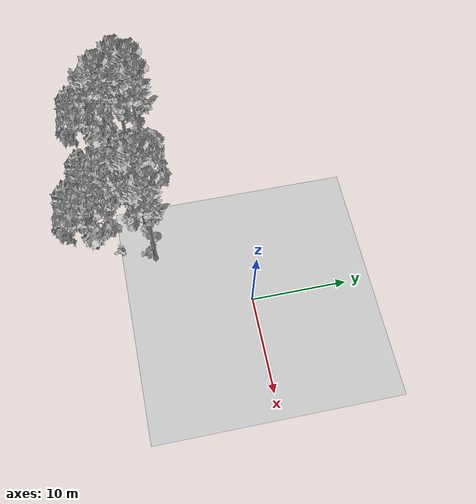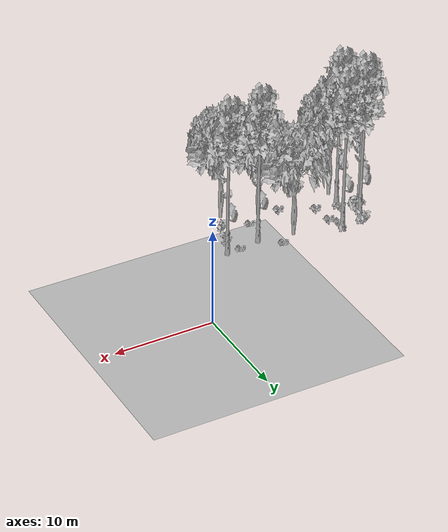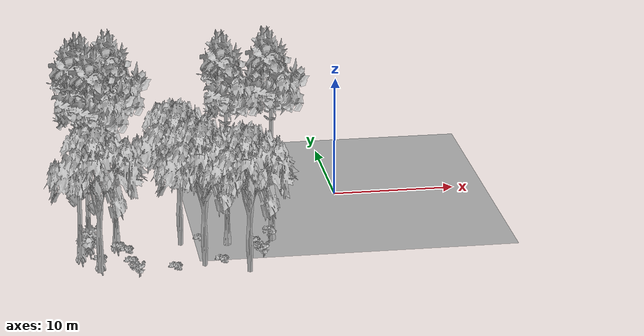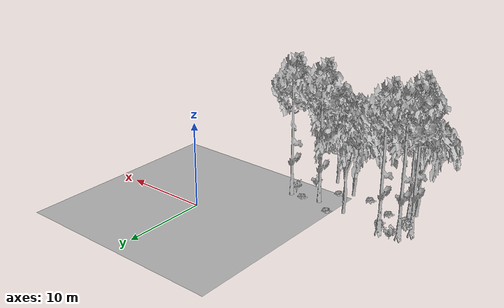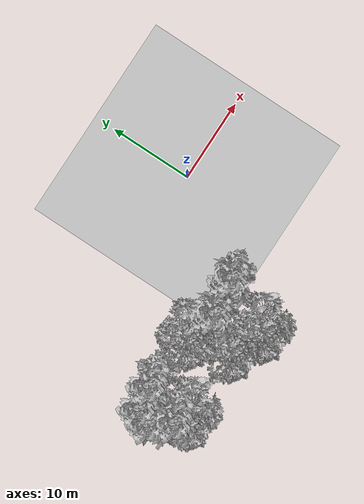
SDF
<sdf version="1.7">
 <world name="default">
  <model name="ground_plane">
   <static>1</static>
   <link name="link">
    <collision name="collision">
     <pose>-50 0 0 0 -0 0</pose>
     <geometry><plane><normal>0 0 1</normal><size>80 80</size></plane></geometry>
     <surface><contact><ode><min_depth>0.01</min_depth><max_vel>0</max_vel></ode></contact></surface>
    </collision>
    <visual name="grass">
     <cast_shadows>0</cast_shadows>
     <geometry>
      <mesh>
       <scale>0.46714285714285714 0.46714285714285714 0.1</scale>
       <uri>file://grass_plane/meshes/grass_plane.dae</uri>
      </mesh>
     </geometry>
    </visual>
   </link>
  </model>
  <model name="Tree 9">
   <static>1</static>
   <pose>-13.837278724867915 -9.116310804493875 0 1.57079 -0 0</pose>
   <link name="link">
    <collision name="collision">
     <geometry><mesh><scale>3.5 5 3.5</scale><uri>model://tree_2/meshes/tree_2.obj</uri></mesh></geometry>
    </collision>
    <visual name="visual">
     <geometry><mesh><scale>3.5 5 3.5</scale><uri>model://tree_2/meshes/tree_2.obj</uri></mesh></geometry>
    </visual>
   </link>
  </model>
  <model name="Tree 71">
   <static>1</static>
   <pose>-20.896210768841442 -8.637615354688243 0 1.57079 -0 0</pose>
   <link name="link">
    <collision name="collision">
     <geometry><mesh><scale>3.5 5 3.5</scale><uri>model://tree_9/meshes/tree_9.obj</uri></mesh></geometry>
    </collision>
    <visual name="visual">
     <geometry><mesh><scale>3.5 5 3.5</scale><uri>model://tree_9/meshes/tree_9.obj</uri></mesh></geometry>
    </visual>
   </link>
  </model>
  <model name="Tree 73">
   <static>1</static>
   <pose>-20.432016152666726 -13.659379917081942 0 1.57079 -0 0</pose>
   <link name="link">
    <collision name="collision">
     <geometry><mesh><scale>3.5 5 3.5</scale><uri>model://tree_2/meshes/tree_2.obj</uri></mesh></geometry>
    </collision>
    <visual name="visual">
     <geometry><mesh><scale>3.5 5 3.5</scale><uri>model://tree_2/meshes/tree_2.obj</uri></mesh></geometry>
    </visual>
   </link>
  </model>
  <model name="Tree 87">
   <static>1</static>
   <pose>-18.721739430540733 -8.259599063494363 0 1.57079 -0 0</pose>
   <link name="link">
    <collision name="collision">
     <geometry><mesh><scale>3.5 5 3.5</scale><uri>model://tree_9/meshes/tree_9.obj</uri></mesh></geometry>
    </collision>
    <visual name="visual">
     <geometry><mesh><scale>3.5 5 3.5</scale><uri>model://tree_9/meshes/tree_9.obj</uri></mesh></geometry>
    </visual>
   </link>
  </model>
  <model name="Tree 117">
   <static>1</static>
   <pose>-9.124989566989495 -15.083363440228645 0 1.57079 -0 0</pose>
   <link name="link">
    <collision name="collision">
     <geometry><mesh><scale>3.5 5 3.5</scale><uri>model://tree_2/meshes/tree_2.obj</uri></mesh></geometry>
    </collision>
    <visual name="visual">
     <geometry><mesh><scale>3.5 5 3.5</scale><uri>model://tree_2/meshes/tree_2.obj</uri></mesh></geometry>
    </visual>
   </link>
  </model>
  <model name="Tree 332">
   <static>1</static>
   <pose>-20.245800696761606 -11.974994519119484 0 1.57079 -0 0</pose>
   <link name="link">
    <collision name="collision">
     <geometry><mesh><scale>3.5 5 3.5</scale><uri>model://tree_9/meshes/tree_9.obj</uri></mesh></geometry>
    </collision>
    <visual name="visual">
     <geometry><mesh><scale>3.5 5 3.5</scale><uri>model://tree_9/meshes/tree_9.obj</uri></mesh></geometry>
    </visual>
   </link>
  </model>
  <model name="Tree 434">
   <static>1</static>
   <pose>-6.527865629991389 -9.111184831189227 0 1.57079 -0 0</pose>
   <link name="link">
    <collision name="collision">
     <geometry><mesh><scale>3.5 5 3.5</scale><uri>model://tree_9/meshes/tree_9.obj</uri></mesh></geometry>
    </collision>
    <visual name="visual">
     <geometry><mesh><scale>3.5 5 3.5</scale><uri>model://tree_9/meshes/tree_9.obj</uri></mesh></geometry>
    </visual>
   </link>
  </model>
  <model name="Tree 522">
   <static>1</static>
   <pose>-10.102604909864944 -9.580918600949737 0 1.57079 -0 0</pose>
   <link name="link">
    <collision name="collision">
     <geometry><mesh><scale>3.5 5 3.5</scale><uri>model://tree_9/meshes/tree_9.obj</uri></mesh></geometry>
    </collision>
    <visual name="visual">
     <geometry><mesh><scale>3.5 5 3.5</scale><uri>model://tree_9/meshes/tree_9.obj</uri></mesh></geometry>
    </visual>
   </link>
  </model>
  <model name="Tree 593">
   <static>1</static>
   <pose>-21.63239201570966 -10.070574425510522 0 1.57079 -0 0</pose>
   <link name="link">
    <collision name="collision">
     <geometry><mesh><scale>3.5 5 3.5</scale><uri>model://tree_9/meshes/tree_9.obj</uri></mesh></geometry>
    </collision>
    <visual name="visual">
     <geometry><mesh><scale>3.5 5 3.5</scale><uri>model://tree_9/meshes/tree_9.obj</uri></mesh></geometry>
    </visual>
   </link>
  </model>
  <model name="Tree 630">
   <static>1</static>
   <pose>-12.406747354636494 -13.472333957552472 0 1.57079 -0 0</pose>
   <link name="link">
    <collision name="collision">
     <geometry><mesh><scale>3.5 5 3.5</scale><uri>model://tree_2/meshes/tree_2.obj</uri></mesh></geometry>
    </collision>
    <visual name="visual">
     <geometry><mesh><scale>3.5 5 3.5</scale><uri>model://tree_2/meshes/tree_2.obj</uri></mesh></geometry>
    </visual>
   </link>
  </model>
  <model name="Bush 49">
   <static>1</static>
   <pose>-18.037523176222397 -9.694550190816607 0 1.57079 -0 0</pose>
   <link name="link">
    <collision name="collision">
     <geometry><mesh><scale>2 2 2</scale><uri>model://bush_2/meshes/bush_2.obj</uri></mesh></geometry>
     <surface><contact><collide_without_contact>false</collide_without_contact></contact></surface>
    </collision>
    <visual name="visual">
     <geometry><mesh><scale>2 2 2</scale><uri>model://bush_2/meshes/bush_2.obj</uri></mesh></geometry>
    </visual>
   </link>
  </model>
  <model name="Bush 61">
   <static>1</static>
   <pose>-17.506990950607527 -15.017032731215547 0 1.57079 -0 0</pose>
   <link name="link">
    <collision name="collision">
     <geometry><mesh><scale>2 2 2</scale><uri>model://bush_0/meshes/bush_0.obj</uri></mesh></geometry>
     <surface><contact><collide_without_contact>false</collide_without_contact></contact></surface>
    </collision>
    <visual name="visual">
     <geometry><mesh><scale>2 2 2</scale><uri>model://bush_0/meshes/bush_0.obj</uri></mesh></geometry>
    </visual>
   </link>
  </model>
  <model name="Bush 74">
   <static>1</static>
   <pose>-17.882069847085475 -11.9359665819945 0 1.57079 -0 0</pose>
   <link name="link">
    <collision name="collision">
     <geometry><mesh><scale>2 2 2</scale><uri>model://bush_2/meshes/bush_2.obj</uri></mesh></geometry>
     <surface><contact><collide_without_contact>false</collide_without_contact></contact></surface>
    </collision>
    <visual name="visual">
     <geometry><mesh><scale>2 2 2</scale><uri>model://bush_2/meshes/bush_2.obj</uri></mesh></geometry>
    </visual>
   </link>
  </model>
  <model name="Bush 145">
   <static>1</static>
   <pose>-20.49563637490155 -7.37318392726246 0 1.57079 -0 0</pose>
   <link name="link">
    <collision name="collision">
     <geometry><mesh><scale>2 2 2</scale><uri>model://bush_0/meshes/bush_0.obj</uri></mesh></geometry>
     <surface><contact><collide_without_contact>false</collide_without_contact></contact></surface>
    </collision>
    <visual name="visual">
     <geometry><mesh><scale>2 2 2</scale><uri>model://bush_0/meshes/bush_0.obj</uri></mesh></geometry>
    </visual>
   </link>
  </model>
  <model name="Bush 179">
   <static>1</static>
   <pose>-6.774886957456399 -9.727884236008421 0 1.57079 -0 0</pose>
   <link name="link">
    <collision name="collision">
     <geometry><mesh><scale>2 2 2</scale><uri>model://bush_5/meshes/bush_5.obj</uri></mesh></geometry>
     <surface><contact><collide_without_contact>false</collide_without_contact></contact></surface>
    </collision>
    <visual name="visual">
     <geometry><mesh><scale>2 2 2</scale><uri>model://bush_5/meshes/bush_5.obj</uri></mesh></geometry>
    </visual>
   </link>
  </model>
  <model name="Bush 258">
   <static>1</static>
   <pose>-20.19954340019682 -11.167903035137769 0 1.57079 -0 0</pose>
   <link name="link">
    <collision name="collision">
     <geometry><mesh><scale>2 2 2</scale><uri>model://bush_2/meshes/bush_2.obj</uri></mesh></geometry>
     <surface><contact><collide_without_contact>false</collide_without_contact></contact></surface>
    </collision>
    <visual name="visual">
     <geometry><mesh><scale>2 2 2</scale><uri>model://bush_2/meshes/bush_2.obj</uri></mesh></geometry>
    </visual>
   </link>
  </model>
  <model name="Bush 261">
   <static>1</static>
   <pose>-12.105880183164718 -8.20777558529496 0 1.57079 -0 0</pose>
   <link name="link">
    <collision name="collision">
     <geometry><mesh><scale>2 2 2</scale><uri>model://bush_2/meshes/bush_2.obj</uri></mesh></geometry>
     <surface><contact><collide_without_contact>false</collide_without_contact></contact></surface>
    </collision>
    <visual name="visual">
     <geometry><mesh><scale>2 2 2</scale><uri>model://bush_2/meshes/bush_2.obj</uri></mesh></geometry>
    </visual>
   </link>
  </model>
  <model name="Bush 277">
   <static>1</static>
   <pose>-18.632671062920526 -8.868664709551723 0 1.57079 -0 0</pose>
   <link name="link">
    <collision name="collision">
     <geometry><mesh><scale>2 2 2</scale><uri>model://bush_2/meshes/bush_2.obj</uri></mesh></geometry>
     <surface><contact><collide_without_contact>false</collide_without_contact></contact></surface>
    </collision>
    <visual name="visual">
     <geometry><mesh><scale>2 2 2</scale><uri>model://bush_2/meshes/bush_2.obj</uri></mesh></geometry>
    </visual>
   </link>
  </model>
  <model name="Bush 307">
   <static>1</static>
   <pose>-7.648228844464036 -12.548691918703348 0 1.57079 -0 0</pose>
   <link name="link">
    <collision name="collision">
     <geometry><mesh><scale>2 2 2</scale><uri>model://bush_0/meshes/bush_0.obj</uri></mesh></geometry>
     <surface><contact><collide_without_contact>false</collide_without_contact></contact></surface>
    </collision>
    <visual name="visual">
     <geometry><mesh><scale>2 2 2</scale><uri>model://bush_0/meshes/bush_0.obj</uri></mesh></geometry>
    </visual>
   </link>
  </model>
  <model name="Bush 502">
   <static>1</static>
   <pose>-10.89334246254598 -12.589484487504954 0 1.57079 -0 0</pose>
   <link name="link">
    <collision name="collision">
     <geometry><mesh><scale>2 2 2</scale><uri>model://bush_2/meshes/bush_2.obj</uri></mesh></geometry>
     <surface><contact><collide_without_contact>false</collide_without_contact></contact></surface>
    </collision>
    <visual name="visual">
     <geometry><mesh><scale>2 2 2</scale><uri>model://bush_2/meshes/bush_2.obj</uri></mesh></geometry>
    </visual>
   </link>
  </model>
  <model name="Bush 521">
   <static>1</static>
   <pose>-7.992244051002491 -9.261210672434423 0 1.57079 -0 0</pose>
   <link name="link">
    <collision name="collision">
     <geometry><mesh><scale>2 2 2</scale><uri>model://bush_2/meshes/bush_2.obj</uri></mesh></geometry>
     <surface><contact><collide_without_contact>false</collide_without_contact></contact></surface>
    </collision>
    <visual name="visual">
     <geometry><mesh><scale>2 2 2</scale><uri>model://bush_2/meshes/bush_2.obj</uri></mesh></geometry>
    </visual>
   </link>
  </model>
  <model name="Bush 536">
   <static>1</static>
   <pose>-14.592610896072138 -13.50715271119941 0 1.57079 -0 0</pose>
   <link name="link">
    <collision name="collision">
     <geometry><mesh><scale>2 2 2</scale><uri>model://bush_2/meshes/bush_2.obj</uri></mesh></geometry>
     <surface><contact><collide_without_contact>false</collide_without_contact></contact></surface>
    </collision>
    <visual name="visual">
     <geometry><mesh><scale>2 2 2</scale><uri>model://bush_2/meshes/bush_2.obj</uri></mesh></geometry>
    </visual>
   </link>
  </model>
  <model name="Bush 585">
   <static>1</static>
   <pose>-21.082174773423564 -9.88029214740844 0 1.57079 -0 0</pose>
   <link name="link">
    <collision name="collision">
     <geometry><mesh><scale>2 2 2</scale><uri>model://bush_1/meshes/bush_1.obj</uri></mesh></geometry>
     <surface><contact><collide_without_contact>false</collide_without_contact></contact></surface>
    </collision>
    <visual name="visual">
     <geometry><mesh><scale>2 2 2</scale><uri>model://bush_1/meshes/bush_1.obj</uri></mesh></geometry>
    </visual>
   </link>
  </model>
 </world>
</sdf>
